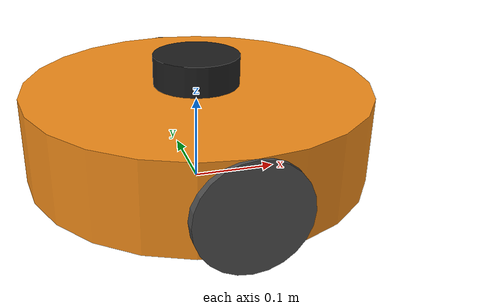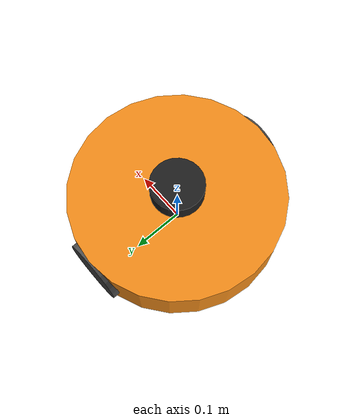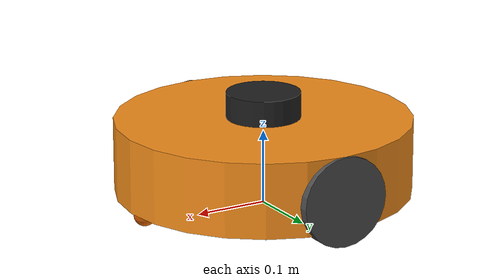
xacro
<?xml version="1.0"?>
<robot name="mbot" xmlns:xacro="http://www.ros.org/wiki/xacro">

    <xacro:include filename="$(find robot_description)/my_robot_base.xacro" />

    <xacro:include filename="$(find robot_description)/my_robot_lidar.xacro" />

    <xacro:include filename="$(find robot_description)/imu.xacro" />

    <joint name="lidar_joint" type="fixed">
        <origin xyz="0 0 ${base_length+wheel_radius/2}" rpy="0 0 0" />
        <parent link="base_link" />
        <child link="lidar_link" />
    </joint>

    <joint name="imu_joint" type="fixed">
      <parent link="base_link"/>
      <child link="imu_link"/>
      <origin xyz="0 0 ${wheel_radius}"/>
    </joint>

    <xacro:my_robot_base/>
    <xacro:lidar/>
    <xacro:imu_/>

</robot>

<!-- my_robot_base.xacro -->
<robot name="my_bot_base" xmlns:xacro="http://www.ros.org/wiki/xacro">

    <xacro:property name="PI" value="3.1415926"/>
    <xacro:property name="base_mass"   value="20" />
    <xacro:property name="base_radius" value="0.20"/>
    <xacro:property name="base_length" value="0.1"/>

    <xacro:property name="wheel_mass"   value="2" />
    <xacro:property name="wheel_radius" value="0.06"/>
    <xacro:property name="wheel_length" value="0.025"/>
    <xacro:property name="wheel_joint_y" value="0.19"/>
    <xacro:property name="wheel_joint_z" value="0.05"/>

    <xacro:property name="caster_mass"    value="0.5" />
    <xacro:property name="caster_radius"  value="0.015"/> <!-- wheel_radius - ( base_length/2 - wheel_joint_z) -->
    <xacro:property name="caster_joint_x" value="0.18"/>

    <xacro:macro name="cylinder_inertial_matrix" params="m r h">
        <inertial>
            <mass value="${m}" />
            <inertia ixx="${m*(3*r*r+h*h)/12}" ixy = "0" ixz = "0"
                iyy="${m*(3*r*r+h*h)/12}" iyz = "0"
                izz="${m*r*r/2}" />
        </inertial>
    </xacro:macro>

    <xacro:macro name="wheel" params="prefix reflect">
        <joint name="${prefix}_wheel_joint" type="continuous">
            <origin xyz="0 ${reflect*wheel_joint_y} ${wheel_radius}" rpy="0 0 0" />
            <parent link="base_link"/>
            <child link="${prefix}_wheel_link"/>
            <axis xyz="0 1 0"/>
        </joint>

        <link name="${prefix}_wheel_link">
            <visual>
                <origin xyz="0 0 0" rpy="${PI/2} 0 0" />
                <geometry>
                    <cylinder radius="${wheel_radius}" length = "${wheel_length}"/>
                </geometry>
            </visual>
            <collision>
                <origin xyz="0 0 0" rpy="${PI/2} 0 0" />
                <geometry>
                    <cylinder radius="${wheel_radius}" length = "${wheel_length}"/>
                </geometry>
            </collision>
            <xacro:cylinder_inertial_matrix  m="${wheel_mass}" r="${wheel_radius}" h="${wheel_length}" />

        </link>

    <gazebo reference="${prefix}_wheel_link">
		<material>Gazebo/DarkGrey</material>
	</gazebo>

    <transmission name="${prefix}_wheel_joint_trans">
        <type>transmission_interface/SimpleTransmission</type>
        <joint name="${prefix}_wheel_joint" >
            <hardwareInterface>hardware_interface/VelocityJointInterface</hardwareInterface>
        </joint>
        <actuator name="${prefix}_wheel_joint_motor">
            <hardwareInterface>hardware_interface/VelocityJointInterface</hardwareInterface>
            <mechanicalReduction>1</mechanicalReduction>
        </actuator>
    </transmission>

   </xacro:macro>

    <xacro:macro name="sphere_inertial_matrix" params="m r">
        <inertial>
            <mass value="${m}" />
            <inertia ixx="${2*m*r*r/5}" ixy="0" ixz="0"
                iyy="${2*m*r*r/5}" iyz="0"
                izz="${2*m*r*r/5}" />
        </inertial>
    </xacro:macro>

    <xacro:macro name="caster" params="prefix reflect">
        <joint name="${prefix}_caster_joint" type="continuous">
            <origin xyz="${reflect*caster_joint_x} 0 ${caster_radius}" rpy="0 0 0"/>
            <parent link="base_link"/>
            <child link="${prefix}_caster_link"/>
            <axis xyz="0 1 0"/>
        </joint>

        <link name="${prefix}_caster_link">
            <visual>
                <geometry>
                    <sphere radius="${caster_radius}" />
                </geometry>
            </visual>
            <collision>
                <geometry>
                    <sphere radius="${caster_radius}" />
                </geometry>
            </collision>
            <xacro:sphere_inertial_matrix  m="${caster_mass}" r="${caster_radius}" />
        </link>

    </xacro:macro>

    <xacro:macro name="my_robot_base">
        <link name="base_footprint">
            <visual>
                <origin xyz="0 0 0" rpy="0 0 0" />
                <geometry>
                    <box size="0.01 0.01 0.01" />
                </geometry>
            </visual>
        </link>
        <gazebo reference="base_footprint">
            <turnGravityOff>false</turnGravityOff>
        </gazebo>

        <joint name="base_footprint_joint" type="fixed">
            <origin xyz="0 0 0" rpy="0 0 0" />
            <parent link="base_footprint"/>
            <child link="base_link" />
        </joint>

        <link name="base_link">
            <visual>
            <origin xyz=" 0 0 ${base_length/2+wheel_radius/3}" rpy="0 0 0" />
                <geometry>
                    <cylinder length="${base_length}" radius="${base_radius}"/>

                </geometry>
            </visual>
            <collision>
            <origin xyz=" 0 0 ${base_length/2+wheel_radius/3}" rpy="0 0 0" />
                <geometry>
                    <cylinder length="${base_length}" radius="${base_radius}"/>
                </geometry>
            </collision>
            <xacro:cylinder_inertial_matrix  m="${base_mass}" r="${base_radius}" h="${base_length}" />
        </link>
            <gazebo reference="base_link">
                <material>Gazebo/Orange</material>
            </gazebo>
        <xacro:wheel prefix="left" reflect="1"/>
        <xacro:wheel prefix="right" reflect="-1"/>

        <xacro:caster prefix="front" reflect="-1"/>
        <xacro:caster prefix="back"  reflect="1"/>

        <gazebo>
            <plugin name="differential_drive_controller"
                    filename="libgazebo_ros_diff_drive.so">
                <ros>
                    <!-- Set namespace -->
                    <namespace>/</namespace>
                    <!-- Remap default topics -->
                    <argument>--ros-args --remap cmd_vel:=cmd_vel</argument>
                    <argument>--ros-args --remap odom:=odom</argument>
                    <update_rate>10.0</update_rate>
                </ros>
                <left_joint>left_wheel_joint</left_joint>
                <right_joint>right_wheel_joint</right_joint>

                <update_rate>10.0</update_rate>
                <!-- 表示两个驱动轮的距离, 单位为米 -->
                <wheel_separation>${wheel_joint_y*2}</wheel_separation>
                <!-- 表示轮子的直径, 单位为米 -->
                <wheel_diameter>${2*wheel_radius}</wheel_diameter>
                <!-- 最大的转矩 -->
                <max_wheel_torque>30</max_wheel_torque>
                <max_wheel_acceleration>1.8</max_wheel_acceleration>

                <odometry_frame>odom</odometry_frame>
                <publish_odom>true</publish_odom>
                <publish_odom_tf>true</publish_odom_tf>
                <robot_base_frame>base_footprint</robot_base_frame>
            </plugin>

            <plugin name="gazebo_ros_joint_state_publisher"
              filename="libgazebo_ros_joint_state_publisher.so">
                <ros>
                  <namespace>/</namespace>
                  <argument>--ros-args --remap joint_states:=joint_states</argument>
                </ros>
                <update_rate>10</update_rate>
                <joint_name>left_wheel_joint</joint_name>
                <joint_name>right_wheel_joint</joint_name>
                <joint_name>front_caster_joint</joint_name>
                <joint_name>back_caster_joint</joint_name>
            </plugin>
        </gazebo>
    </xacro:macro>
</robot>

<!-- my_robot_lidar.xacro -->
<robot xmlns:xacro="http://www.ros.org/wiki/xacro" name="laser">
    <xacro:property name="lidar_radius" value="0.05"/>
    <xacro:property name="lidar_length" value="0.05"/>

    <xacro:macro name="lidar" params="prefix:=lidar">
        <link name="${prefix}_link">
            <inertial>
                <mass value="0.1" />
                <origin xyz="0 0 0" />
                <inertia ixx="0.01" ixy="0.0" ixz="0.0"
                         iyy="0.01" iyz="0.0"
                         izz="0.01" />
            </inertial>

            <visual>
                <origin xyz=" 0 0 0 " rpy="0 0 0" />
                <geometry>
                    <cylinder length="${lidar_length}" radius="${lidar_radius}"/>
                </geometry>
                <material name="black"/>
            </visual>

            <collision>
                <origin xyz="0.0 0.0 0.0" rpy="0 0 0" />
                <geometry>
                    <cylinder length="${lidar_length}" radius="${lidar_radius}"/>
                </geometry>
            </collision>
        </link>

        <gazebo reference="${prefix}_link">
            <material>Gazebo/Black</material>
        </gazebo>

        <gazebo reference="${prefix}_link">
            <sensor type="ray" name="head_hokuyo_sensor">
                <visualize>true</visualize>
                <update_rate>2</update_rate>
                <ray>
                    <scan>
                      <horizontal>
                        <samples>181</samples>
                        <resolution>1</resolution>
                        <min_angle>-3.14</min_angle>
                        <max_angle>3.14</max_angle>
                      </horizontal>
                    </scan>
                    <range>
                      <min>0.08</min>
                      <max>6.0</max>
                      <resolution>0.05</resolution>
                    </range>
                    <noise>
                      <type>gaussian</type>
                      <mean>0.0</mean>
                      <stddev>0.01</stddev>
                    </noise>
                </ray>

                <plugin name="gazebo_ros_head_hokuyo_controlle" filename="libgazebo_ros_ray_sensor.so" >
                    <ros>
                        <namespace>/</namespace>
                        <argument>~/out:=/scan</argument>
                    </ros>
                    <output_type>sensor_msgs/LaserScan</output_type>
                </plugin>
            </sensor>
        </gazebo>

    </xacro:macro>
</robot>

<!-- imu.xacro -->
<robot xmlns:xacro="http://www.ros.org/wiki/xacro" name="laser">
    <xacro:property name="imu_radius" value="0.02"/>

    <xacro:macro name="box_inertia" params="m w h d">
      <inertial>
        <origin xyz="0 0 0" rpy="${pi/2} 0 ${pi/2}"/>
        <mass value="${m}"/>
        <inertia ixx="${(m/12) * (h*h + d*d)}" ixy="0.0" ixz="0.0" iyy="${(m/12) * (w*w + d*d)}" iyz="0.0" izz="${(m/12) * (w*w + h*h)}"/>
      </inertial>
    </xacro:macro>

    <xacro:macro name="imu_" params="prefix:=imu">
        <link name="${prefix}_link">
            <visual>
            <origin xyz="0 0 0" rpy="0 0 0" />
              <geometry>
                  <box size="${imu_radius} ${imu_radius} ${imu_radius}"/>
              </geometry>
            </visual>

            <collision>
              <geometry>
                  <box size="${imu_radius} ${imu_radius} ${imu_radius}"/>
              </geometry>
            </collision>
            <xacro:box_inertia m="${imu_radius}" w="${imu_radius}" h="${imu_radius}" d="${imu_radius}"/>
        </link>

        <gazebo reference="${prefix}_link">
            <material>Gazebo/Black</material>
        </gazebo>

        <gazebo reference="imu_link">
            <sensor name="imu_sensor" type="imu">
             <plugin filename="libgazebo_ros_imu_sensor.so" name="imu_plugin">
                <ros>
                  <namespace>/</namespace>
                  <remapping>~/out:=imu</remapping>
                </ros>
                <initial_orientation_as_reference>false</initial_orientation_as_reference>
              </plugin>
              <always_on>true</always_on>
              <update_rate>100</update_rate>
              <visualize>true</visualize>
              <imu>
                <angular_velocity>
                  <x>
                    <noise type="gaussian">
                      <mean>0.0</mean>
                      <stddev>2e-4</stddev>
                      <bias_mean>0.0000075</bias_mean>
                      <bias_stddev>0.0000008</bias_stddev>
                    </noise>
                  </x>
                  <y>
                    <noise type="gaussian">
                      <mean>0.0</mean>
                      <stddev>2e-4</stddev>
                      <bias_mean>0.0000075</bias_mean>
                      <bias_stddev>0.0000008</bias_stddev>
                    </noise>
                  </y>
                  <z>
                    <noise type="gaussian">
                      <mean>0.0</mean>
                      <stddev>2e-4</stddev>
                      <bias_mean>0.0000075</bias_mean>
                      <bias_stddev>0.0000008</bias_stddev>
                    </noise>
                  </z>
                </angular_velocity>
                <linear_acceleration>
                  <x>
                    <noise type="gaussian">
                      <mean>0.0</mean>
                      <stddev>1.7e-2</stddev>
                      <bias_mean>0.1</bias_mean>
                      <bias_stddev>0.001</bias_stddev>
                    </noise>
                  </x>
                  <y>
                    <noise type="gaussian">
                      <mean>0.0</mean>
                      <stddev>1.7e-2</stddev>
                      <bias_mean>0.1</bias_mean>
                      <bias_stddev>0.001</bias_stddev>
                    </noise>
                  </y>
                  <z>
                    <noise type="gaussian">
                      <mean>0.0</mean>
                      <stddev>1.7e-2</stddev>
                      <bias_mean>0.1</bias_mean>
                      <bias_stddev>0.001</bias_stddev>
                    </noise>
                  </z>
                </linear_acceleration>
              </imu>
            </sensor>
          </gazebo>

    </xacro:macro>
</robot>
